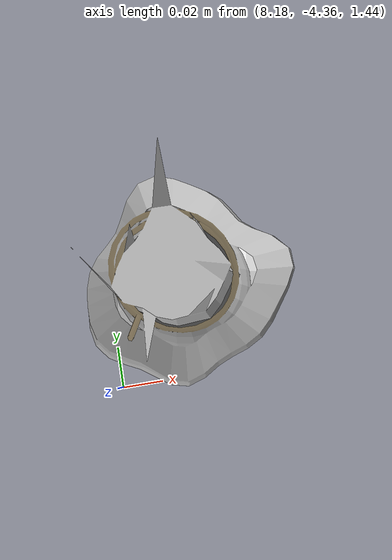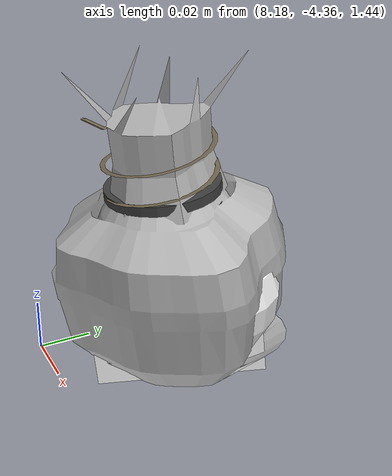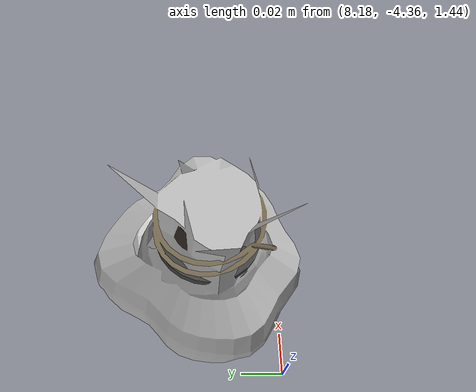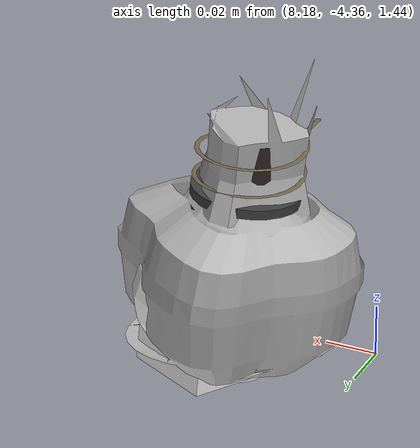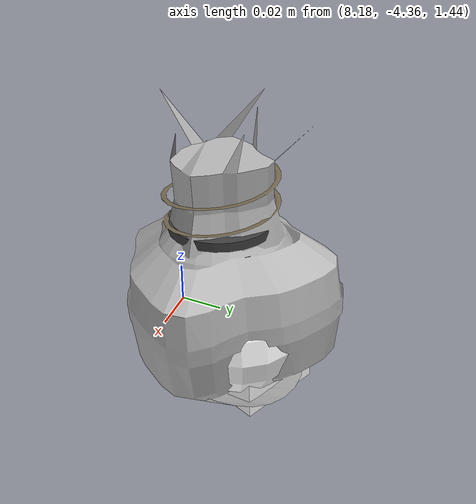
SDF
<sdf version="1.11">
 <world name="peach_orchard">
  <model name="ground">
   <static>true</static>
   <link name="link">
    <visual name="soil">
     <geometry><plane><normal>0 0 1</normal><size>32 22</size></plane></geometry>
     <material>
      <ambient>1 1 1 1</ambient>
      <diffuse>1 1 1 1</diffuse>
      <specular>0.1 0.1 0.1 1</specular>
      <pbr>
       <metal>
        <albedo_map>textures/soil_albedo.png</albedo_map>
        <normal_map type="tangent">textures/soil_normal.png</normal_map>
        <roughness>0.95</roughness>
        <metalness>0</metalness>
       </metal>
      </pbr>
     </material>
    </visual>
    <collision name="c_soil">
     <geometry><plane><normal>0 0 1</normal><size>32 22</size></plane></geometry>
    </collision>
   </link>
  </model>
  <model name="peach_tree_r4_t1_03">
   <pose>8.22 -4.31799 1.45 0 0.0988685 -2.34472</pose>
   <static>true</static>
   <link name="bag">
    <visual name="bag_mesh">
     <pose>0 0 0.0464123 0 0 -0</pose>
     <geometry>
      <mesh><uri>model://peach_sim/meshes/bagged_peach.glb</uri><scale>1.03155 1.13478 1.05482</scale></mesh>
     </geometry>
    </visual>
    <visual name="body">
     <pose>0 0 0.0284123 0 0 0</pose>
     <geometry><ellipsoid><radii>0.0386833 0.0295042 0.0306853</radii></ellipsoid></geometry>
     <material>
      <ambient>1 1 1 1</ambient>
      <diffuse>1 1 1 1</diffuse>
      <specular>0.1 0.1 0.1 1</specular>
      <pbr>
       <metal>
        <albedo_map>textures/paper_bag_albedo.png</albedo_map>
        <normal_map type="tangent">textures/paper_bag_normal.png</normal_map>
        <roughness>0.72</roughness>
        <metalness>0</metalness>
       </metal>
      </pbr>
     </material>
    </visual>
    <visual name="bottom_fold">
     <pose>0 0 0.012 0 0 0.35</pose>
     <geometry><box><size>0.059959 0.0339298 0.022</size></box></geometry>
     <material>
      <ambient>1 1 1 1</ambient>
      <diffuse>1 1 1 1</diffuse>
      <specular>0.1 0.1 0.1 1</specular>
      <pbr>
       <metal>
        <albedo_map>textures/paper_bag_albedo.png</albedo_map>
        <normal_map type="tangent">textures/paper_bag_normal.png</normal_map>
        <roughness>0.8</roughness>
        <metalness>0</metalness>
       </metal>
      </pbr>
     </material>
    </visual>
    <visual name="fruit">
     <pose>0 0 0.0170049 0 0 0</pose>
     <geometry><sphere><radius>0.0239251</radius></sphere></geometry>
     <material>
      <ambient>1 1 1 1</ambient>
      <diffuse>1 1 1 1</diffuse>
      <specular>0.1 0.1 0.1 1</specular>
      <pbr>
       <metal>
        <albedo_map>textures/fruit_skin_albedo.png</albedo_map>
        <normal_map type="tangent">textures/fruit_skin_normal.png</normal_map>
        <roughness>0.55</roughness>
        <metalness>0</metalness>
       </metal>
      </pbr>
     </material>
    </visual>
    <visual name="neck">
     <pose>0 0 0.0658246 0 0 0</pose>
     <geometry><cylinder><radius>0.013</radius><length>0.018</length></cylinder></geometry>
     <material>
      <ambient>1 1 1 1</ambient>
      <diffuse>1 1 1 1</diffuse>
      <specular>0.1 0.1 0.1 1</specular>
      <pbr>
       <metal>
        <albedo_map>textures/paper_bag_albedo.png</albedo_map>
        <normal_map type="tangent">textures/paper_bag_normal.png</normal_map>
        <roughness>0.75</roughness>
        <metalness>0</metalness>
       </metal>
      </pbr>
     </material>
    </visual>
    <visual name="gather">
     <pose>0 0 0.0468246 0 0 0</pose>
     <geometry><cylinder><radius>0.019</radius><length>0.02</length></cylinder></geometry>
     <material>
      <ambient>1 1 1 1</ambient>
      <diffuse>1 1 1 1</diffuse>
      <specular>0.1 0.1 0.1 1</specular>
      <pbr>
       <metal>
        <albedo_map>textures/paper_bag_albedo.png</albedo_map>
        <normal_map type="tangent">textures/paper_bag_normal.png</normal_map>
        <roughness>0.8</roughness>
        <metalness>0</metalness>
       </metal>
      </pbr>
     </material>
    </visual>
    <visual name="inner_paper">
     <pose>0 0 0.0708246 0 0 0</pose>
     <geometry><cylinder><radius>0.01</radius><length>0.008</length></cylinder></geometry>
     <material>
      <ambient>0.180392 0.14902 0.133333 1</ambient>
      <diffuse>0.180392 0.14902 0.133333 1</diffuse>
      <specular>0.1 0.1 0.1 1</specular>
     </material>
    </visual>
    <visual name="wire_0">
     <pose>0 0 0.0608246 0 0 0</pose>
     <geometry><cylinder><radius>0.0205</radius><length>0.0035</length></cylinder></geometry>
     <material>
      <ambient>0.25 0.25 0.25 1</ambient>
      <diffuse>0.25 0.25 0.25 1</diffuse>
      <specular>0.1 0.1 0.1 1</specular>
     </material>
    </visual>
    <visual name="wire_1">
     <pose>0 0 0.0678246 0 0 0</pose>
     <geometry><cylinder><radius>0.0205</radius><length>0.0035</length></cylinder></geometry>
     <material>
      <ambient>0.25 0.25 0.25 1</ambient>
      <diffuse>0.25 0.25 0.25 1</diffuse>
      <specular>0.1 0.1 0.1 1</specular>
     </material>
    </visual>
    <visual name="wire_tail">
     <pose>0.01 0 0.0688246 0 0.521618 0</pose>
     <geometry><cylinder><radius>0.0012</radius><length>0.026</length></cylinder></geometry>
     <material>
      <ambient>0.25 0.25 0.25 1</ambient>
      <diffuse>0.25 0.25 0.25 1</diffuse>
      <specular>0.1 0.1 0.1 1</specular>
     </material>
    </visual>
    <collision name="c_body">
     <pose>0 0 0.0284123 0 0 0</pose>
     <geometry><cylinder><radius>0.0386833</radius><length>0.0568246</length></cylinder></geometry>
    </collision>
   </link>
  </model>
 </world>
</sdf>
